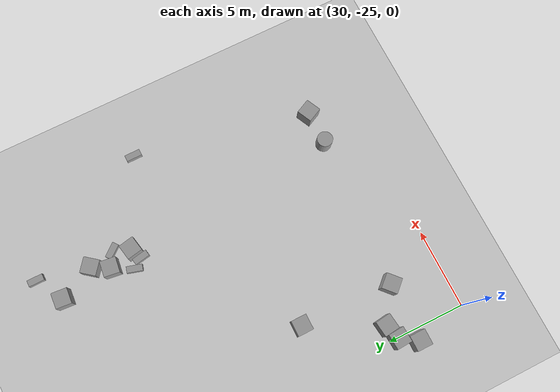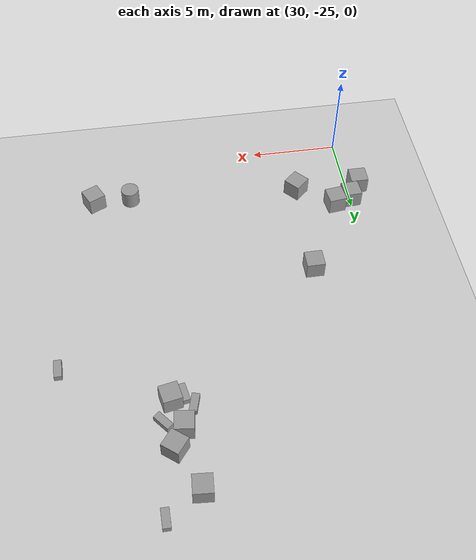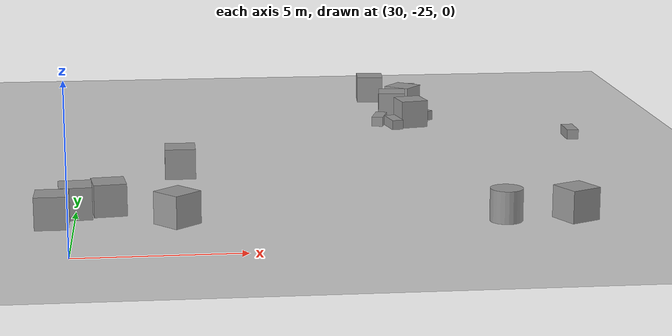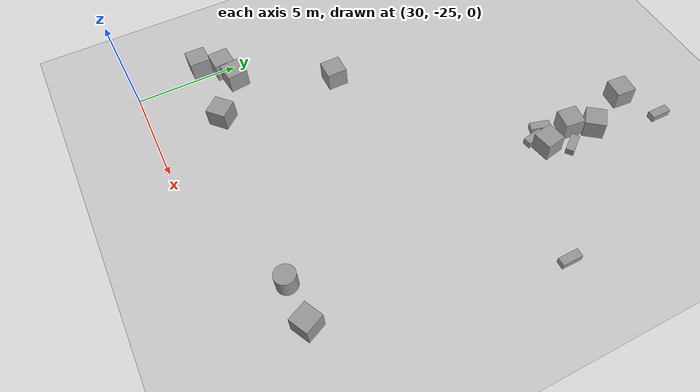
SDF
<sdf version="1.6">
 <world name="default">
  <model name="ground_plane">
   <static>1</static>
   <link name="link">
    <collision name="collision">
     <geometry><plane><normal>0 0 1</normal><size>100 100</size></plane></geometry>
     <surface><friction><ode><mu>100</mu><mu2>50</mu2></ode></friction></surface>
    </collision>
    <visual name="visual">
     <cast_shadows>0</cast_shadows>
     <geometry><plane><normal>0 0 1</normal><size>100 100</size></plane></geometry>
    </visual>
   </link>
  </model>
  <model name="unit_box">
   <pose>41.4714 -6.92045 0.5 0 0 -0.126627</pose>
   <link name="link">
    <inertial>
     <mass>1</mass>
     <inertia>
      <ixx>0.166667</ixx>
      <ixy>0</ixy>
      <ixz>0</ixz>
      <iyy>0.166667</iyy>
      <iyz>0</iyz>
      <izz>0.166667</izz>
     </inertia>
    </inertial>
    <collision name="collision"><geometry><box><size>1 1 1</size></box></geometry></collision>
    <visual name="visual">
     <geometry><box><size>1 1 1</size></box></geometry>
     <material>
      <script><name>Gazebo/Grey</name><uri>file://media/materials/scripts/gazebo.material</uri></script>
     </material>
    </visual>
   </link>
  </model>
  <model name="unit_box_0">
   <pose>41.0304 -3.57519 0.5 0 0 -0.077353</pose>
   <link name="link">
    <inertial>
     <mass>1</mass>
     <inertia>
      <ixx>0.166667</ixx>
      <ixy>0</ixy>
      <ixz>0</ixz>
      <iyy>0.166667</iyy>
      <iyz>0</iyz>
      <izz>0.166667</izz>
     </inertia>
    </inertial>
    <collision name="collision"><geometry><box><size>1 1 1</size></box></geometry></collision>
    <visual name="visual">
     <geometry><box><size>1 1 1</size></box></geometry>
     <material>
      <script><name>Gazebo/Grey</name><uri>file://media/materials/scripts/gazebo.material</uri></script>
     </material>
    </visual>
   </link>
  </model>
  <model name="unit_box_1">
   <pose>42.0446 -5.8583 0.5 0 -0 0.90067</pose>
   <link name="link">
    <inertial>
     <mass>1</mass>
     <inertia>
      <ixx>0.166667</ixx>
      <ixy>0</ixy>
      <ixz>0</ixz>
      <iyy>0.166667</iyy>
      <iyz>0</iyz>
      <izz>0.166667</izz>
     </inertia>
    </inertial>
    <collision name="collision"><geometry><box><size>1 1 1</size></box></geometry></collision>
    <visual name="visual">
     <geometry><box><size>1 1 1</size></box></geometry>
     <material>
      <script><name>Gazebo/Grey</name><uri>file://media/materials/scripts/gazebo.material</uri></script>
     </material>
    </visual>
   </link>
  </model>
  <model name="unit_box_18">
   <pose>31.0033 -20.1925 0.499995 0 1e-05 0.122617</pose>
   <link name="link">
    <inertial>
     <mass>1</mass>
     <inertia>
      <ixx>0.166667</ixx>
      <ixy>0</ixy>
      <ixz>0</ixz>
      <iyy>0.166667</iyy>
      <iyz>0</iyz>
      <izz>0.166667</izz>
     </inertia>
    </inertial>
    <collision name="collision"><geometry><box><size>1 1 1</size></box></geometry></collision>
    <visual name="visual">
     <geometry><box><size>1 1 1</size></box></geometry>
     <material>
      <script><name>Gazebo/Grey</name><uri>file://media/materials/scripts/gazebo.material</uri></script>
     </material>
    </visual>
   </link>
  </model>
  <model name="unit_box_19">
   <pose>29.355 -21.5353 0.499995 1e-05 -0 -0.000251</pose>
   <link name="link">
    <inertial>
     <mass>1</mass>
     <inertia>
      <ixx>0.166667</ixx>
      <ixy>0</ixy>
      <ixz>0</ixz>
      <iyy>0.166667</iyy>
      <iyz>0</iyz>
      <izz>0.166667</izz>
     </inertia>
    </inertial>
    <collision name="collision"><geometry><box><size>1 1 1</size></box></geometry></collision>
    <visual name="visual">
     <geometry><box><size>1 1 1</size></box></geometry>
     <material>
      <script><name>Gazebo/Grey</name><uri>file://media/materials/scripts/gazebo.material</uri></script>
     </material>
    </visual>
   </link>
  </model>
  <model name="unit_box_8_clone_1">
   <pose>33.0467 -21.6306 0.499998 0 0 -0.835213</pose>
   <link name="link">
    <inertial>
     <mass>1</mass>
     <inertia>
      <ixx>0.166667</ixx>
      <ixy>0</ixy>
      <ixz>0</ixz>
      <iyy>0.166667</iyy>
      <iyz>0</iyz>
      <izz>0.166667</izz>
     </inertia>
    </inertial>
    <collision name="collision"><geometry><box><size>1 0.999998 0.999997</size></box></geometry></collision>
    <visual name="visual">
     <geometry><box><size>1 0.999998 0.999997</size></box></geometry>
     <material>
      <script><name>Gazebo/Grey</name><uri>file://media/materials/scripts/gazebo.material</uri></script>
     </material>
    </visual>
   </link>
  </model>
  <model name="unit_box_20">
   <pose>30.0029 -20.4988 0.499995 -1.57081 -0 1.63074</pose>
   <link name="link">
    <inertial>
     <mass>1</mass>
     <inertia>
      <ixx>0.166667</ixx>
      <ixy>0</ixy>
      <ixz>0</ixz>
      <iyy>0.166667</iyy>
      <iyz>0</iyz>
      <izz>0.166667</izz>
     </inertia>
    </inertial>
    <collision name="collision"><geometry><box><size>1 1 1</size></box></geometry></collision>
    <visual name="visual">
     <geometry><box><size>1 1 1</size></box></geometry>
     <material>
      <script><name>Gazebo/Grey</name><uri>file://media/materials/scripts/gazebo.material</uri></script>
     </material>
    </visual>
   </link>
  </model>
  <model name="unit_box_23">
   <pose>44.961 -22.2562 0.5 0 -0 0.449288</pose>
   <link name="link">
    <inertial>
     <mass>1</mass>
     <inertia>
      <ixx>0.166667</ixx>
      <ixy>0</ixy>
      <ixz>0</ixz>
      <iyy>0.166667</iyy>
      <iyz>0</iyz>
      <izz>0.166667</izz>
     </inertia>
    </inertial>
    <collision name="collision"><geometry><box><size>1 1 1</size></box></geometry></collision>
    <visual name="visual">
     <geometry><box><size>1 1 1</size></box></geometry>
     <material>
      <script><name>Gazebo/Grey</name><uri>file://media/materials/scripts/gazebo.material</uri></script>
     </material>
    </visual>
   </link>
  </model>
  <model name="unit_box_36">
   <pose>33.2351 -15.6755 0.499995 0 -1e-05 0.000759</pose>
   <link name="link">
    <inertial>
     <mass>1</mass>
     <inertia>
      <ixx>0.166667</ixx>
      <ixy>0</ixy>
      <ixz>0</ixz>
      <iyy>0.166667</iyy>
      <iyz>0</iyz>
      <izz>0.166667</izz>
     </inertia>
    </inertial>
    <collision name="collision"><geometry><box><size>1 1 1</size></box></geometry></collision>
    <visual name="visual">
     <geometry><box><size>1 1 1</size></box></geometry>
     <material>
      <script><name>Gazebo/Grey</name><uri>file://media/materials/scripts/gazebo.material</uri></script>
     </material>
    </visual>
   </link>
  </model>
  <model name="unit_cylinder">
   <pose>42.8303 -22.2818 0.499991 -0 -0 -0.023362</pose>
   <link name="link">
    <inertial>
     <mass>1</mass>
     <inertia><ixx>0.145833</ixx><ixy>0</ixy><ixz>0</ixz><iyy>0.145833</iyy><iyz>0</iyz><izz>0.125</izz></inertia>
    </inertial>
    <collision name="collision">
     <geometry><cylinder><radius>0.499999</radius><length>1</length></cylinder></geometry>
    </collision>
    <visual name="visual">
     <geometry><cylinder><radius>0.499999</radius><length>1</length></cylinder></geometry>
     <material>
      <script><name>Gazebo/Grey</name><uri>file://media/materials/scripts/gazebo.material</uri></script>
     </material>
    </visual>
   </link>
  </model>
  <model name="unit_box_41">
   <pose>41.9719 -8.50891 0.499991 0 0 -1.37791</pose>
   <link name="link">
    <inertial>
     <mass>1</mass>
     <inertia>
      <ixx>0.166667</ixx>
      <ixy>0</ixy>
      <ixz>0</ixz>
      <iyy>0.166667</iyy>
      <iyz>0</iyz>
      <izz>0.166667</izz>
     </inertia>
    </inertial>
    <collision name="collision"><geometry><box><size>1 0.999998 1</size></box></geometry></collision>
    <visual name="visual">
     <geometry><box><size>1 0.999998 1</size></box></geometry>
     <material>
      <script><name>Gazebo/Grey</name><uri>file://media/materials/scripts/gazebo.material</uri></script>
     </material>
    </visual>
   </link>
  </model>
  <model name="unit_box_41_clone_0">
   <pose>47.4514 -11.0713 0.175965 0 -0 0</pose>
   <link name="link">
    <inertial>
     <mass>1</mass>
     <inertia>
      <ixx>0.166667</ixx>
      <ixy>0</ixy>
      <ixz>0</ixz>
      <iyy>0.166667</iyy>
      <iyz>0</iyz>
      <izz>0.166667</izz>
     </inertia>
    </inertial>
    <collision name="collision"><geometry><box><size>0.414252 1 0.351931</size></box></geometry></collision>
    <visual name="visual">
     <geometry><box><size>0.414252 1 0.351931</size></box></geometry>
     <material>
      <script><name>Gazebo/Grey</name><uri>file://media/materials/scripts/gazebo.material</uri></script>
     </material>
    </visual>
   </link>
  </model>
  <model name="unit_box_41_clone_3">
   <pose>42.866 -2.47441 0.175965 0 -0 0</pose>
   <link name="link">
    <inertial>
     <mass>1</mass>
     <inertia>
      <ixx>0.166667</ixx>
      <ixy>0</ixy>
      <ixz>0</ixz>
      <iyy>0.166667</iyy>
      <iyz>0</iyz>
      <izz>0.166667</izz>
     </inertia>
    </inertial>
    <collision name="collision"><geometry><box><size>0.414252 1 0.351931</size></box></geometry></collision>
    <visual name="visual">
     <geometry><box><size>0.414252 1 0.351931</size></box></geometry>
     <material>
      <script><name>Gazebo/Grey</name><uri>file://media/materials/scripts/gazebo.material</uri></script>
     </material>
    </visual>
   </link>
  </model>
  <model name="unit_box_41_clone_4">
   <pose>42.4607 -7.37261 0.175965 0 -0 0.674603</pose>
   <link name="link">
    <inertial>
     <mass>1</mass>
     <inertia>
      <ixx>0.166667</ixx>
      <ixy>0</ixy>
      <ixz>0</ixz>
      <iyy>0.166667</iyy>
      <iyz>0</iyz>
      <izz>0.166667</izz>
     </inertia>
    </inertial>
    <collision name="collision"><geometry><box><size>0.414252 1 0.351931</size></box></geometry></collision>
    <visual name="visual">
     <geometry><box><size>0.414252 1 0.351931</size></box></geometry>
     <material>
      <script><name>Gazebo/Grey</name><uri>file://media/materials/scripts/gazebo.material</uri></script>
     </material>
    </visual>
   </link>
  </model>
  <model name="unit_box_41_clone_5">
   <pose>41.2995 -8.78888 0.175964 0 -7e-06 0.180183</pose>
   <link name="link">
    <inertial>
     <mass>1</mass>
     <inertia>
      <ixx>0.166667</ixx>
      <ixy>0</ixy>
      <ixz>0</ixz>
      <iyy>0.166667</iyy>
      <iyz>0</iyz>
      <izz>0.166667</izz>
     </inertia>
    </inertial>
    <collision name="collision">
     <geometry><box><size>0.414252 0.999999 0.351931</size></box></geometry>
    </collision>
    <visual name="visual">
     <geometry><box><size>0.414252 0.999999 0.351931</size></box></geometry>
     <material>
      <script><name>Gazebo/Grey</name><uri>file://media/materials/scripts/gazebo.material</uri></script>
     </material>
    </visual>
   </link>
  </model>
  <model name="unit_box_41_clone_6">
   <pose>40.8418 -8.1582 0.175965 0 0 -0.28532</pose>
   <link name="link">
    <inertial>
     <mass>1</mass>
     <inertia>
      <ixx>0.166667</ixx>
      <ixy>0</ixy>
      <ixz>0</ixz>
      <iyy>0.166667</iyy>
      <iyz>0</iyz>
      <izz>0.166667</izz>
     </inertia>
    </inertial>
    <collision name="collision"><geometry><box><size>0.414252 1 0.351931</size></box></geometry></collision>
    <visual name="visual">
     <geometry><box><size>0.414252 1 0.351931</size></box></geometry>
     <material>
      <script><name>Gazebo/Grey</name><uri>file://media/materials/scripts/gazebo.material</uri></script>
     </material>
    </visual>
   </link>
  </model>
 </world>
</sdf>
